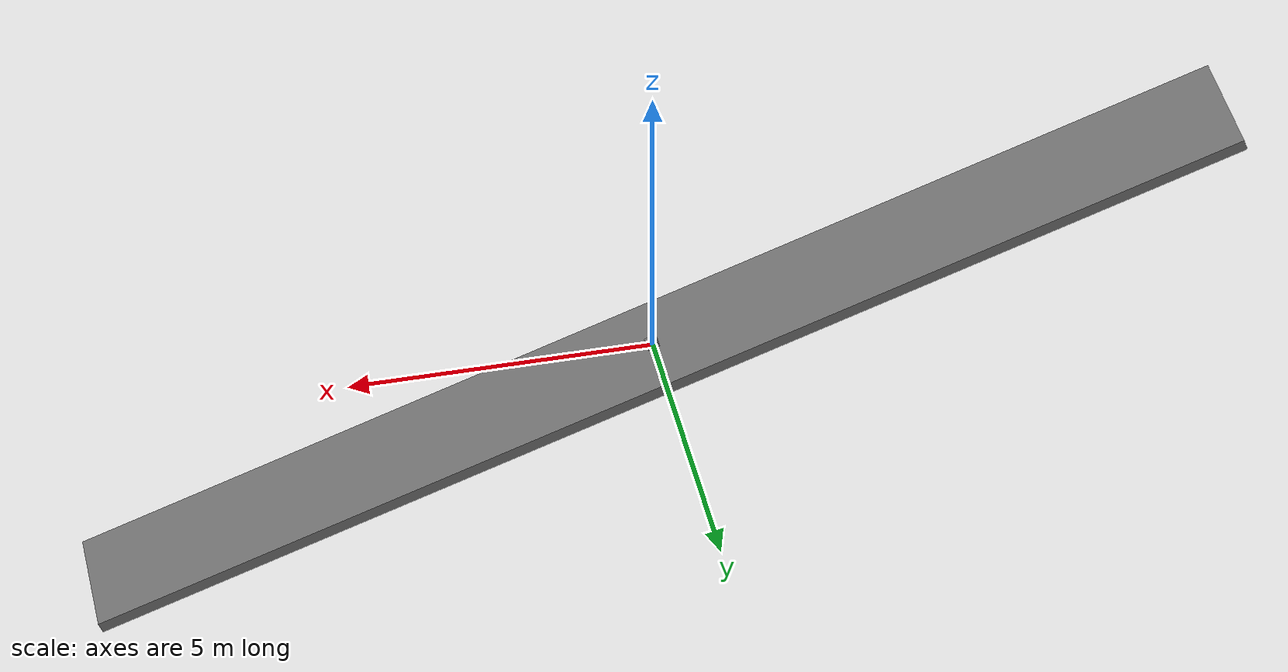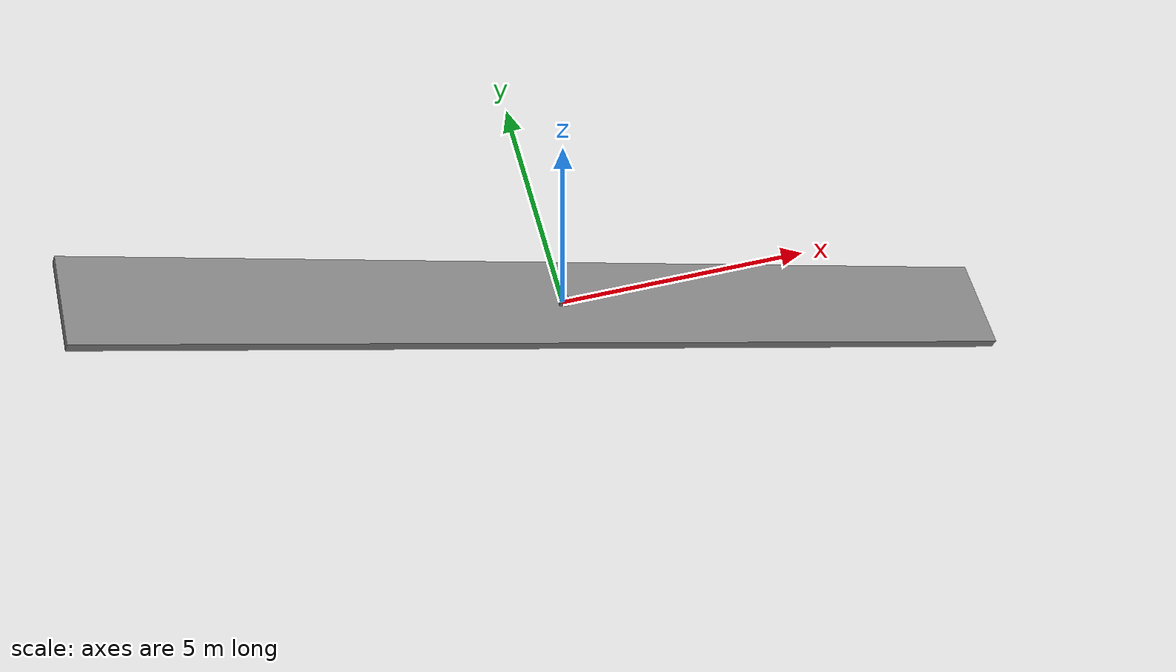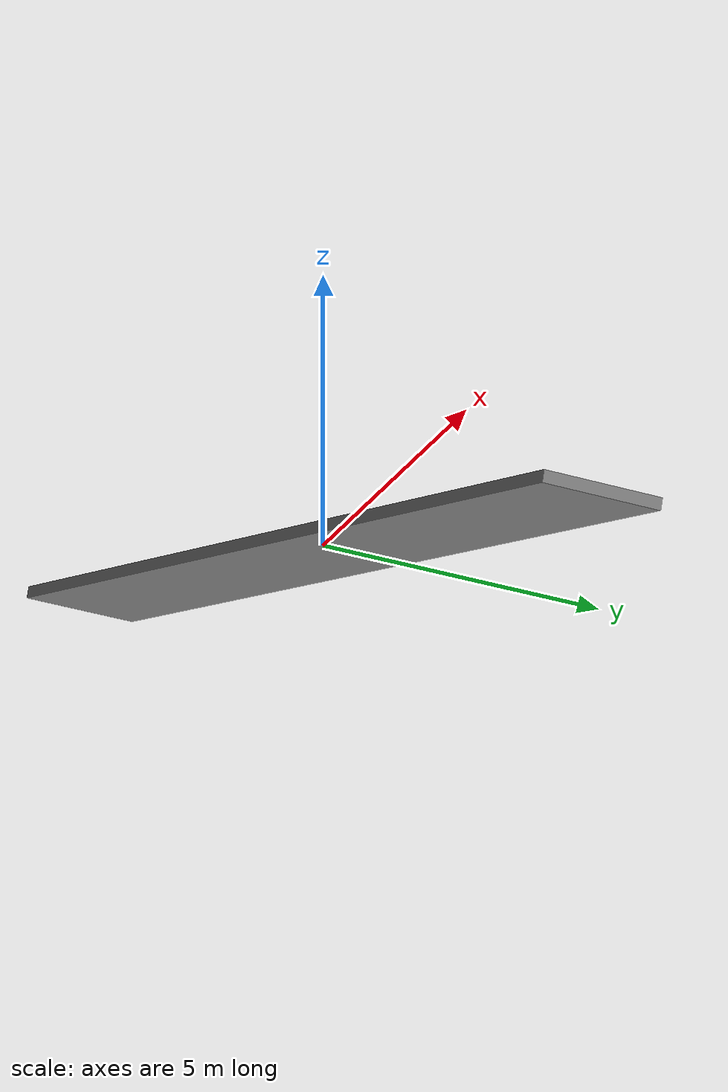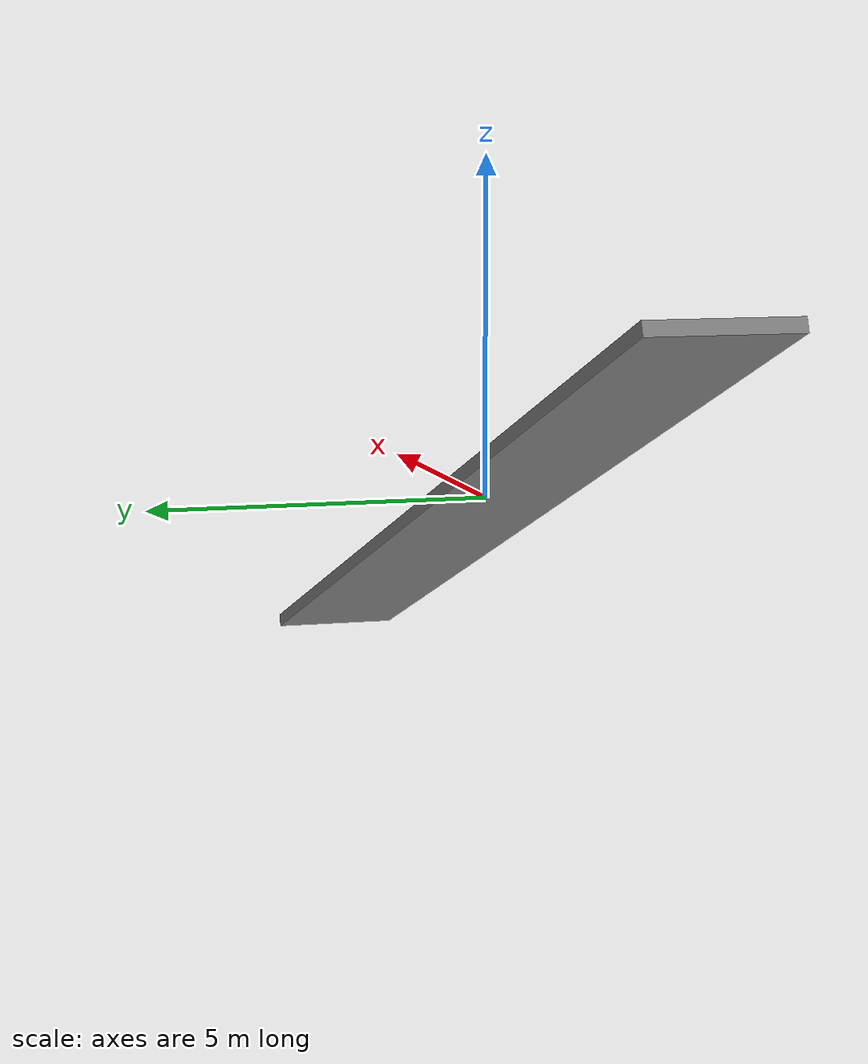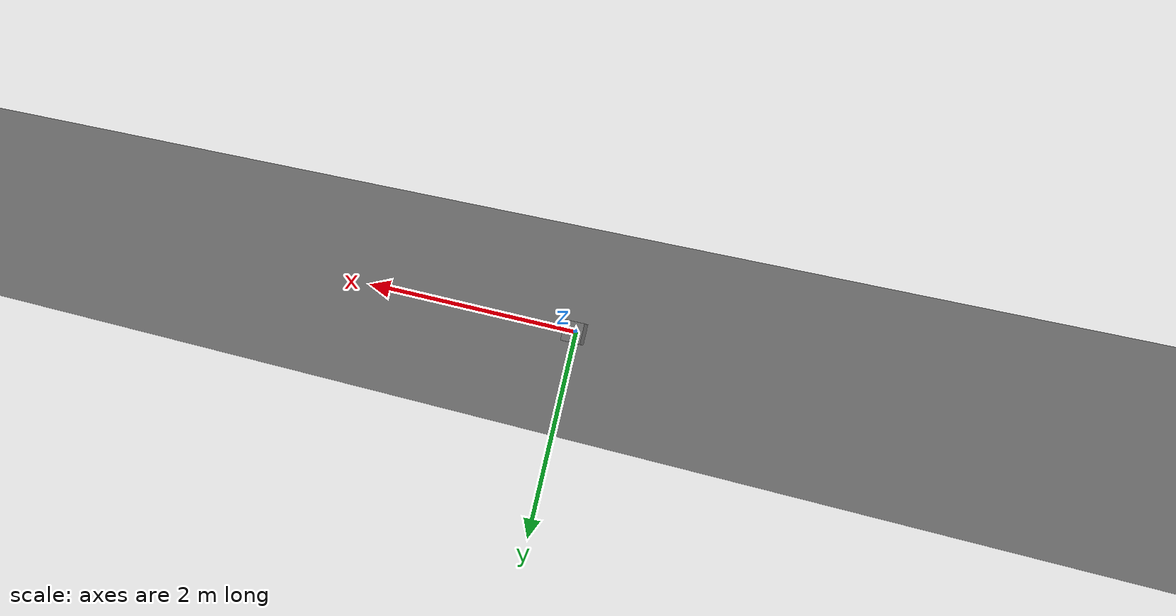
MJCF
<mujoco model="bounded_incline_probe">
 <compiler angle="degree"/>
 <option timestep="0.0005" gravity="0 0 -9.8100004196167" integrator="implicitfast" cone="elliptic" solver="Newton" iterations="100" tolerance="1e-10"/>
 <worldbody>
  <geom name="ramp" type="box" size="10 1 0.10000000149011612" pos="-0.034202014332566873 -0 -0.093969262078590854" axisangle="0 1 0 20.0"/>
  <body name="block" pos="0.017135209180616003 0 0.047078600301374014" axisangle="0 1 0 20.0">
   <freejoint/>
   <geom name="block_shape" type="box" size="0.10000000149011612 0.10000000149011612 0.05000000074505806" mass="1.0"/>
  </body>
 </worldbody>
 <contact><pair geom1="ramp" geom2="block_shape" condim="3" friction="0.15000000596046448 0.15000000596046448 0 0 0" solref="0.02 1" solimp="0.9 0.95 0.001"/></contact>
</mujoco>
